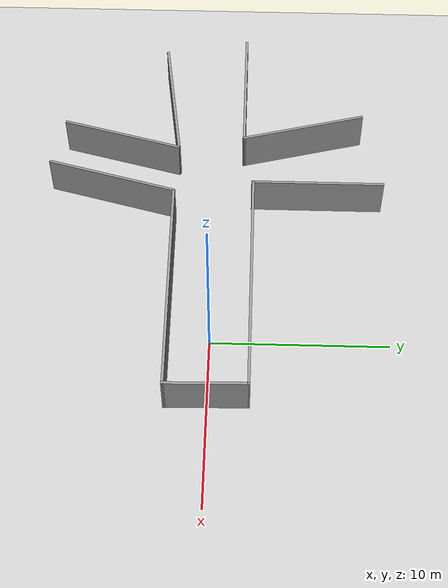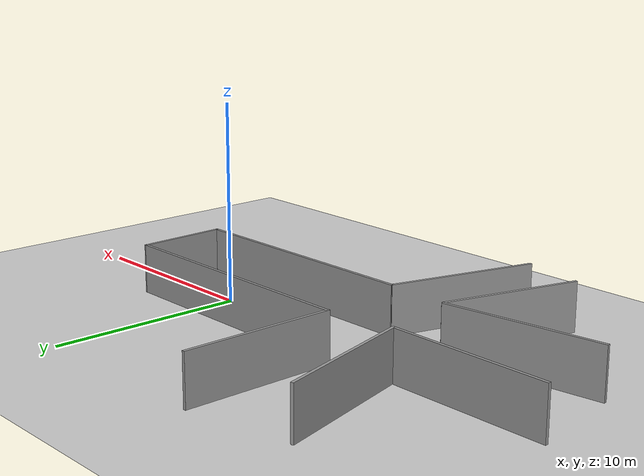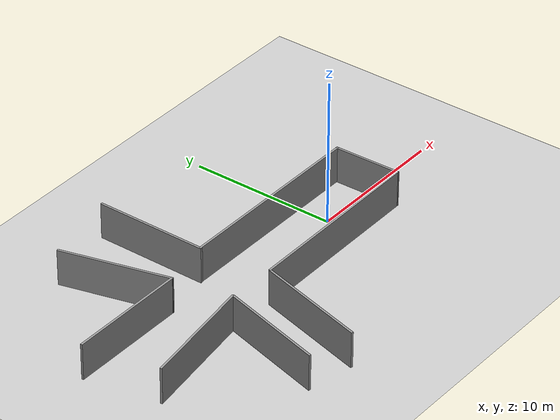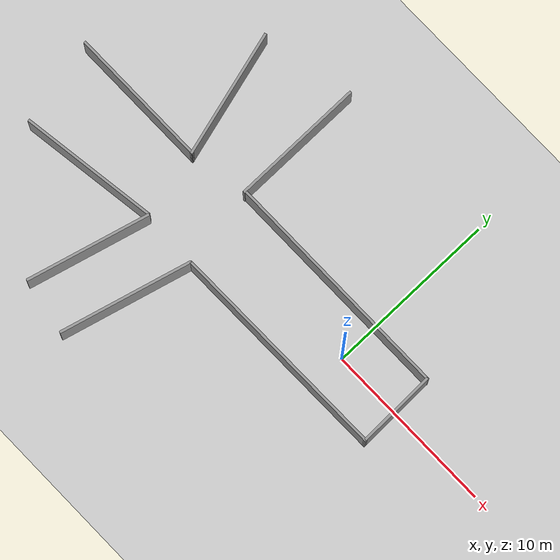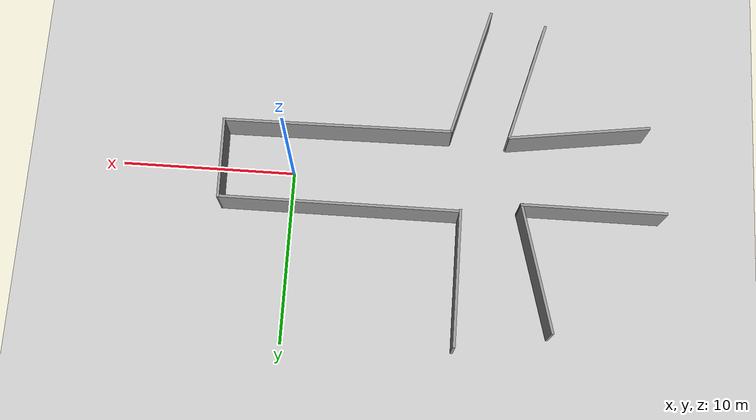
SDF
<sdf version="1.7">
 <world name="default">
  <light name="sun" type="directional">
   <pose>0 0 10 0 -0 0</pose>
   <diffuse>0.8 0.8 0.8 1</diffuse>
   <specular>0.2 0.2 0.2 1</specular>
   <attenuation>
    <range>1000</range>
    <constant>0.9</constant>
    <linear>0.01</linear>
    <quadratic>0.001</quadratic>
   </attenuation>
   <direction>-0.5 0.1 -0.9</direction>
   <spot><inner_angle>0</inner_angle><outer_angle>0</outer_angle><falloff>0</falloff></spot>
  </light>
  <model name="ground_plane">
   <static>1</static>
   <link name="link">
    <collision name="collision">
     <geometry><plane><normal>0 0 1</normal><size>100 100</size></plane></geometry>
     <surface><friction><ode><mu>100</mu><mu2>50</mu2></ode></friction></surface>
    </collision>
    <visual name="visual">
     <cast_shadows>0</cast_shadows>
     <geometry><plane><normal>0 0 1</normal><size>100 100</size></plane></geometry>
     <material>
      <script><uri>file://media/materials/scripts/gazebo.material</uri><name>Gazebo/Grey</name></script>
     </material>
    </visual>
   </link>
  </model>
  <gravity>0 0 -9.8</gravity>
  <magnetic_field>6e-06 2.3e-05 -4.2e-05</magnetic_field>
  <atmosphere type="adiabatic"/>
  <physics type="ode">
   <max_step_size>0.001</max_step_size>
   <real_time_factor>1</real_time_factor>
   <real_time_update_rate>1000</real_time_update_rate>
  </physics>
  <scene><ambient>0.4 0.4 0.4 1</ambient><background>0.7 0.7 0.7 1</background><shadows>1</shadows></scene>
  <audio><device>default</device></audio>
  <spherical_coordinates>
   <surface_model>EARTH_WGS84</surface_model>
   <latitude_deg>0</latitude_deg>
   <longitude_deg>0</longitude_deg>
   <elevation>0</elevation>
   <heading_deg>0</heading_deg>
  </spherical_coordinates>
  <model name="garlegil">
   <pose>-8.54875 -0.012242 0 0 -0 0</pose>
   <link name="Wall_10">
    <collision name="Wall_10_Collision">
     <geometry><box><size>7.25 0.15 2.5</size></box></geometry>
     <pose>0 0 1.25 0 -0 0</pose>
    </collision>
    <visual name="Wall_10_Visual">
     <pose>0 0 1.25 0 -0 0</pose>
     <geometry><box><size>7.25 0.15 2.5</size></box></geometry>
     <material>
      <script><uri>file://media/materials/scripts/gazebo.material</uri><name>Gazebo/Grey</name></script>
      <ambient>1 1 1 1</ambient>
     </material>
     <meta><layer>0</layer></meta>
    </visual>
    <pose>-4.61149 -5.73235 0 0 -0 -1.8326</pose>
   </link>
   <link name="Wall_13">
    <collision name="Wall_13_Collision">
     <geometry><box><size>8.07692 0.15 2.5</size></box></geometry>
     <pose>0 0 1.25 0 -0 0</pose>
    </collision>
    <visual name="Wall_13_Visual">
     <pose>0 0 1.25 0 -0 0</pose>
     <geometry><box><size>8.07692 0.15 2.5</size></box></geometry>
     <material>
      <script><uri>file://media/materials/scripts/gazebo.material</uri><name>Gazebo/Grey</name></script>
      <ambient>1 1 1 1</ambient>
     </material>
     <meta><layer>0</layer></meta>
    </visual>
    <pose>-7.67192 -2.79536 0 0 -0 -3.00351</pose>
   </link>
   <link name="Wall_15">
    <collision name="Wall_15_Collision">
     <geometry><box><size>8.25 0.15 2.5</size></box></geometry>
     <pose>0 0 1.25 0 -0 0</pose>
    </collision>
    <visual name="Wall_15_Visual">
     <pose>0 0 1.25 0 -0 0</pose>
     <geometry><box><size>8.25 0.15 2.5</size></box></geometry>
     <material>
      <script><uri>file://media/materials/scripts/gazebo.material</uri><name>Gazebo/Grey</name></script>
      <ambient>1 1 1 1</ambient>
     </material>
     <meta><layer>0</layer></meta>
    </visual>
    <pose>-8.56719 1.63454 0 0 -0 3.14159</pose>
   </link>
   <link name="Wall_18">
    <collision name="Wall_18_Collision">
     <geometry><box><size>7.5 0.15 2.5</size></box></geometry>
     <pose>0 0 1.25 0 -0 0</pose>
    </collision>
    <visual name="Wall_18_Visual">
     <pose>0 0 1.25 0 -0 0</pose>
     <geometry><box><size>7.5 0.15 2.5</size></box></geometry>
     <material>
      <script><uri>file://media/materials/scripts/gazebo.material</uri><name>Gazebo/Grey</name></script>
      <ambient>1 1 1 1</ambient>
     </material>
     <meta><layer>0</layer></meta>
    </visual>
    <pose>-5.46835 5.18432 0 0 -0 1.8326</pose>
   </link>
   <link name="Wall_20">
    <collision name="Wall_20_Collision">
     <geometry><box><size>7.75 0.15 2.5</size></box></geometry>
     <pose>0 0 1.25 0 -0 0</pose>
    </collision>
    <visual name="Wall_20_Visual">
     <pose>0 0 1.25 0 -0 0</pose>
     <geometry><box><size>7.75 0.15 2.5</size></box></geometry>
     <material>
      <script><uri>file://media/materials/scripts/gazebo.material</uri><name>Gazebo/Grey</name></script>
      <ambient>1 1 1 1</ambient>
     </material>
     <meta><layer>0</layer></meta>
    </visual>
    <pose>-1.11081 6.00662 0 0 -0 1.5708</pose>
   </link>
   <link name="Wall_23">
    <collision name="Wall_23_Collision">
     <geometry><box><size>4.68095 0.15 2.5</size></box></geometry>
     <pose>0 0 1.25 0 -0 0</pose>
    </collision>
    <visual name="Wall_23_Visual">
     <pose>0 0 1.25 0 -0 0</pose>
     <geometry><box><size>4.68095 0.15 2.5</size></box></geometry>
     <material>
      <script><uri>file://media/materials/scripts/gazebo.material</uri><name>Gazebo/Grey</name></script>
      <ambient>1 1 1 1</ambient>
     </material>
     <meta><layer>0</layer></meta>
    </visual>
    <pose>12.57 -0.023211 0 0 -0 -1.55064</pose>
   </link>
   <link name="Wall_3">
    <collision name="Wall_3_Collision">
     <geometry><box><size>13.0899 0.15 2.5</size></box></geometry>
     <pose>0 0 1.25 0 -0 0</pose>
    </collision>
    <visual name="Wall_3_Visual">
     <pose>0 0 1.25 0 -0 0</pose>
     <geometry><box><size>13.0899 0.15 2.5</size></box></geometry>
     <material>
      <script><uri>file://media/materials/scripts/gazebo.material</uri><name>Gazebo/Grey</name></script>
      <ambient>1 1 1 1</ambient>
     </material>
     <meta><layer>0</layer></meta>
    </visual>
    <pose>6.14594 -2.34173 0 0 -0 -3.13332</pose>
   </link>
   <link name="Wall_6">
    <collision name="Wall_6_Collision">
     <geometry><box><size>13.75 0.15 2.5</size></box></geometry>
     <pose>0 0 1.25 0 -0 0</pose>
    </collision>
    <visual name="Wall_6_Visual">
     <pose>0 0 1.25 0 -0 0</pose>
     <geometry><box><size>13.75 0.15 2.5</size></box></geometry>
     <material>
      <script><uri>file://media/materials/scripts/gazebo.material</uri><name>Gazebo/Grey</name></script>
      <ambient>1 1 1 1</ambient>
     </material>
     <meta><layer>0</layer></meta>
    </visual>
    <pose>5.72437 2.2418 0 0 -0 0</pose>
   </link>
   <link name="Wall_8">
    <collision name="Wall_8_Collision">
     <geometry><box><size>7.75 0.15 2.5</size></box></geometry>
     <pose>0 0 1.25 0 -0 0</pose>
    </collision>
    <visual name="Wall_8_Visual">
     <pose>0 0 1.25 0 -0 0</pose>
     <geometry><box><size>7.75 0.15 2.5</size></box></geometry>
     <material>
      <script><uri>file://media/materials/scripts/gazebo.material</uri><name>Gazebo/Grey</name></script>
      <ambient>1 1 1 1</ambient>
     </material>
     <meta><layer>0</layer></meta>
    </visual>
    <pose>-1.36082 -6.11925 0 0 -0 -1.8326</pose>
   </link>
   <static>1</static>
  </model>
 </world>
</sdf>
